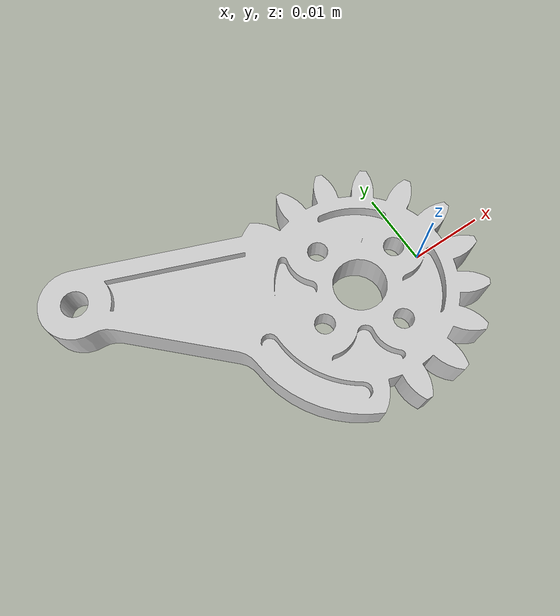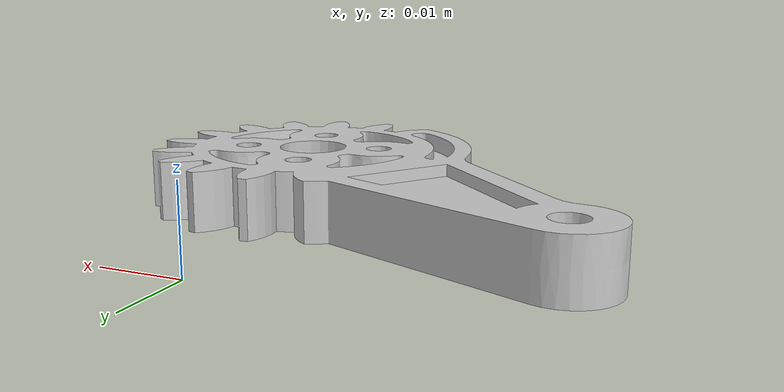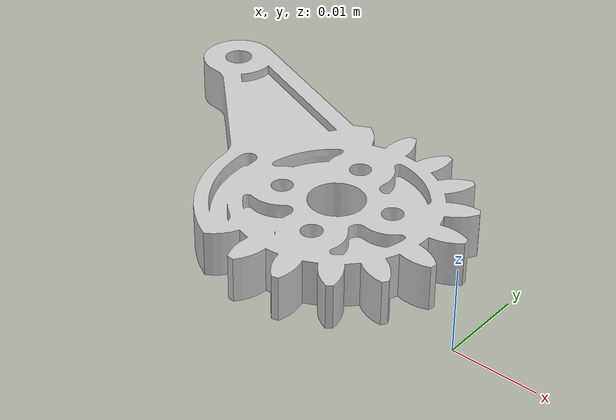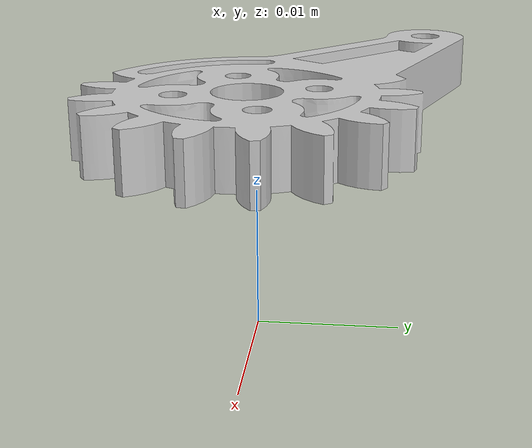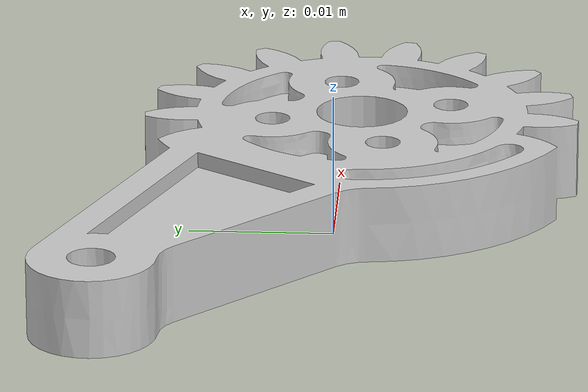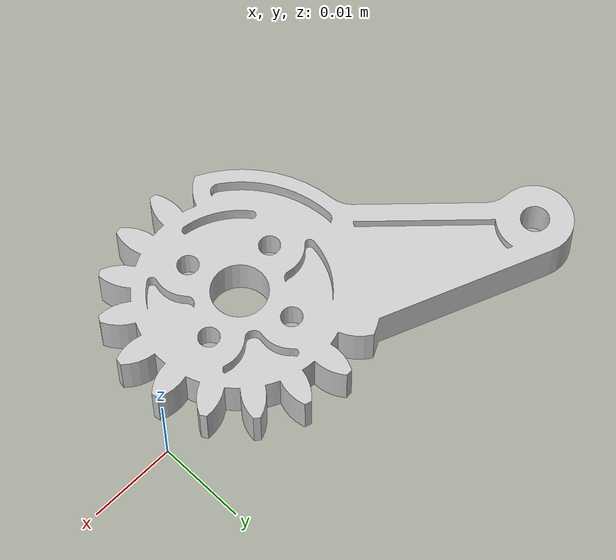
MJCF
<mujoco model="gripper_left3">
  <default>
    <default class="visual">
      <geom group="1" type="mesh" contype="0" conaffinity="0"/>
    </default>
    <default class="collision">
      <geom group="0" type="mesh"/>
    </default>
  </default>
  <asset>
    <material name="material_0.001" specular="0.0" shininess="0.0" rgba="0.800000 0.800000 0.800000 1.000000"/>
    <mesh file="gripper_left3.obj"/>
  </asset>
  <worldbody>
    <body name="gripper_left3">
      <geom material="material_0.001" mesh="gripper_left3" class="visual"/>
      <geom mesh="gripper_left3" class="collision"/>
    </body>
  </worldbody>
</mujoco>
